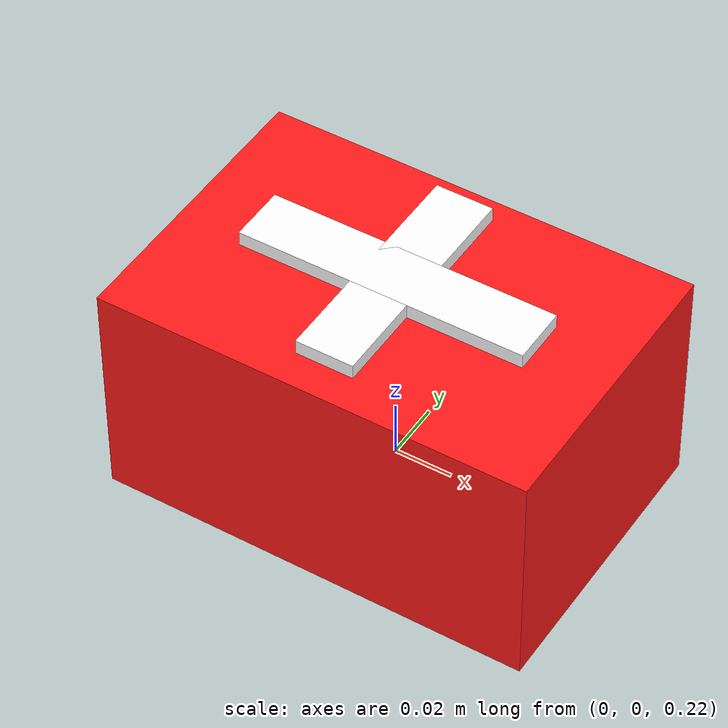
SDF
<?xml version="1.0"?>
<sdf version="1.9">
  <model name="payload_box">
    <static>true</static>
    <link name="box_link">
      <pose>0 0 0.25 0 0 0</pose>
      <inertial>
        <mass>1.0</mass>
        <inertia>
          <ixx>0.002</ixx>
          <iyy>0.001</iyy>
          <izz>0.002</izz>
          <ixy>0.0</ixy>
          <ixz>0.0</ixz>
          <iyz>0.0</iyz>
        </inertia>
      </inertial>
      <visual name="box_visual">
        <geometry>
          <box><size>0.15 0.10 0.08</size></box>
        </geometry>
        <material>
          <ambient>1.0 0.0 0.0 1.0</ambient>
          <diffuse>1.0 0.1 0.1 1.0</diffuse>
          <specular>0.8 0.2 0.2 1.0</specular>
          <emissive>0.3 0.0 0.0 1.0</emissive>
        </material>
      </visual>
      <!-- Medical cross on top face -->
      <visual name="cross_h">
        <pose>0 0 0.045 0 0 0</pose>
        <geometry>
          <box><size>0.10 0.02 0.005</size></box>
        </geometry>
        <material>
          <ambient>1.0 1.0 1.0 1.0</ambient>
          <diffuse>1.0 1.0 1.0 1.0</diffuse>
        </material>
      </visual>
      <visual name="cross_v">
        <pose>0 0 0.045 0 0 0</pose>
        <geometry>
          <box><size>0.02 0.08 0.005</size></box>
        </geometry>
        <material>
          <ambient>1.0 1.0 1.0 1.0</ambient>
          <diffuse>1.0 1.0 1.0 1.0</diffuse>
        </material>
      </visual>
    </link>
  </model>
</sdf>
